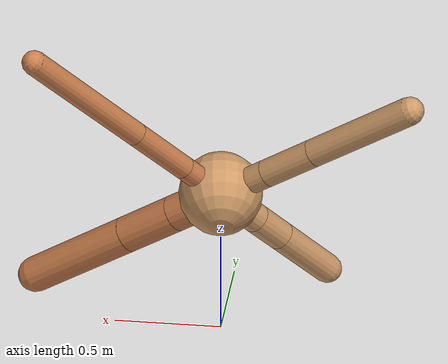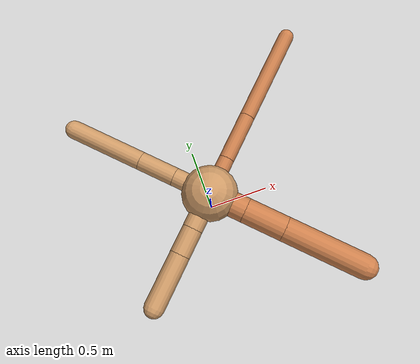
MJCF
<?xml version="1.0" ?>
<mujoco model="ant">

	<compiler angle="degree" coordinate="local" inertiafromgeom="true"/>

	<option integrator="RK4" timestep="0.01"/>

	<custom>

		<numeric data="0.0 0.0 0.55 1.0 0.0 0.0 0.0 0.0 1.0 0.0 -1.0 0.0 -1.0 0.0 1.0" name="init_qpos"/>

	</custom>

	<default>

		<joint armature="1" damping="1" limited="true"/>

		<geom conaffinity="0" condim="3" density="5.0" friction="1.5 0.1 0.1" margin="0.01" rgba="0.8 0.6 0.4 1"/>

	</default>

	<worldbody>

		<body name="torso" pos="0 0 0.75">

			<geom name="torso_geom" pos="0 0 0" size="0.20619576640440998" type="sphere"/>

			<!--joint armature="0" damping="0" limited="false" margin="0.01" name="root" pos="0 0 0" type="free"/-->

			<body name="front_left_leg" pos="0 0 0">

				<geom fromto="0 0 0 0.2 0.2 0" name="aux_1_geom" size="0.05694030069146845" type="capsule" rgba=".8 .5 .3 1"/>

				<body name="aux_1" pos="0.2 0.2 0">

					<joint axis="0 0 1" name="hip_1" pos="0.0 0.0 0.0" range="-40 40" type="hinge"/>

					<geom fromto="0 0 0 0.2527409495750271 0.2527409495750271 0" name="left_leg_geom" size="0.05694030069146845" type="capsule" rgba=".8 .5 .3 1"/>

					<body pos="0.2527409495750271 0.2527409495750271 0" name="front_left_foot">

						<joint axis="-1 1 0" name="ankle_1" pos="0.0 0.0 0.0" range="30 100" type="hinge"/>

						<geom fromto="0 0 0 0.5054818991500541 0.5054818991500541 0" name="left_ankle_geom" size="0.05694030069146845" type="capsule" rgba=".8 .5 .3 1"/>

					</body>

				</body>

			</body>

			<body name="front_right_leg" pos="0 0 0">

				<geom fromto="0 0 0 -0.2 0.2 0" name="aux_2_geom" size="0.06792066759841406" type="capsule"/>

				<body name="aux_2" pos="-0.2 0.2 0">

					<joint axis="0 0 1" name="hip_2" pos="0.0 0.0 0.0" range="-40 40" type="hinge"/>

					<geom fromto="0 0 0 -0.1950719490830894 0.1950719490830894 0" name="right_leg_geom" size="0.06792066759841406" type="capsule"/>

					<body pos="-0.1950719490830894 0.1950719490830894 0" name="front_right_foot">

						<joint axis="1 1 0" name="ankle_2" pos="0.0 0.0 0.0" range="-100 -30" type="hinge"/>

						<geom fromto="0 0 0 -0.3901438981661788 0.3901438981661788 0" name="right_ankle_geom" size="0.06792066759841406" type="capsule"/>

					</body>

				</body>

			</body>

			<body name="left_back_leg" pos="0 0 0">

				<geom fromto="0 0 0 -0.2 -0.2 0" name="aux_3_geom" size="0.07469703492009806" type="capsule"/>

				<body name="aux_3" pos="-0.2 -0.2 0">

					<joint axis="0 0 1" name="hip_3" pos="0.0 0.0 0.0" range="-40 40" type="hinge"/>

					<geom fromto="0 0 0 -0.14165404390480216 -0.14165404390480216 0" name="back_leg_geom" size="0.07469703492009806" type="capsule"/>

					<body pos="-0.14165404390480216 -0.14165404390480216 0" name="left_back_foot">

						<joint axis="-1 1 0" name="ankle_3" pos="0.0 0.0 0.0" range="-100 -30" type="hinge"/>

						<geom fromto="0 0 0 -0.2833080878096043 -0.2833080878096043 0" name="third_ankle_geom" size="0.07469703492009806" type="capsule"/>

					</body>

				</body>

			</body>

			<body name="right_back_leg" pos="0 0 0">

				<geom fromto="0 0 0 0.2 -0.2 0" name="aux_4_geom" size="0.09252040551428538" type="capsule" rgba=".8 .5 .3 1"/>

				<body name="aux_4" pos="0.2 -0.2 0">

					<joint axis="0 0 1" name="hip_4" pos="0.0 0.0 0.0" range="-40 40" type="hinge"/>

					<geom fromto="0 0 0 0.21762545475560016 -0.21762545475560016 0" name="rightback_leg_geom" size="0.09252040551428538" type="capsule" rgba=".8 .5 .3 1"/>

					<body pos="0.21762545475560016 -0.21762545475560016 0" name="right_back_foot">

						<joint axis="1 1 0" name="ankle_4" pos="0.0 0.0 0.0" range="30 100" type="hinge"/>

						<geom fromto="0 0 0 0.4352509095112003 -0.4352509095112003 0" name="fourth_ankle_geom" size="0.09252040551428538" type="capsule" rgba=".8 .5 .3 1"/>

					</body>

				</body>

			</body>

		</body>

	</worldbody>

	<actuator>

		<motor ctrllimited="true" ctrlrange="-1.0 1.0" joint="hip_4" gear="150"/>

		<motor ctrllimited="true" ctrlrange="-1.0 1.0" joint="ankle_4" gear="150"/>

		<motor ctrllimited="true" ctrlrange="-1.0 1.0" joint="hip_1" gear="150"/>

		<motor ctrllimited="true" ctrlrange="-1.0 1.0" joint="ankle_1" gear="150"/>

		<motor ctrllimited="true" ctrlrange="-1.0 1.0" joint="hip_2" gear="150"/>

		<motor ctrllimited="true" ctrlrange="-1.0 1.0" joint="ankle_2" gear="150"/>

		<motor ctrllimited="true" ctrlrange="-1.0 1.0" joint="hip_3" gear="150"/>

		<motor ctrllimited="true" ctrlrange="-1.0 1.0" joint="ankle_3" gear="150"/>

	</actuator>

</mujoco>
